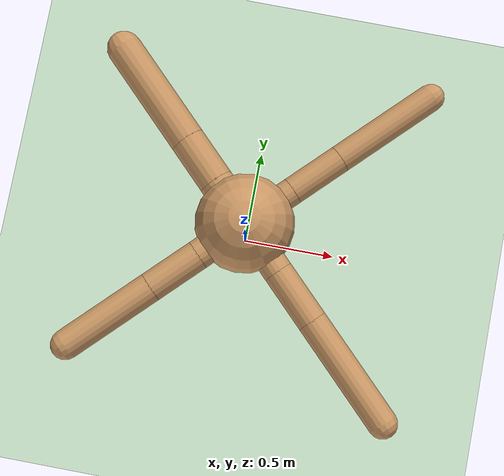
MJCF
<mujoco model="ant">
  <compiler angle="degree" coordinate="local" inertiafromgeom="true"/>
  <option integrator="RK4" timestep="0.01"/>
  <custom>
    <numeric data="0.0 0.0 0.55 1.0 0.0 0.0 0.0 0.0 1.0 0.0 -1.0 0.0 -1.0 0.0 1.0" name="init_qpos"/>
  </custom>
  <default>
    <joint armature="1" damping="1" limited="true"/>
    <geom conaffinity="0" condim="3" density="5.0" friction="1 0.5 0.5" margin="0.01" rgba="0.8 0.6 0.4 1"/>
  </default>
  <asset>
    <texture builtin="gradient" height="100" rgb1="1 1 1" rgb2="0 0 0" type="skybox" width="100"/>
    <texture builtin="flat" height="1278" mark="cross" markrgb="1 1 1" name="texgeom" random="0.01" rgb1="0.8 0.6 0.4" rgb2="0.8 0.6 0.4" type="cube" width="127"/>
    <texture builtin="checker" height="100" name="texplane" rgb1="0 0 0" rgb2="0.8 0.8 0.8" type="2d" width="100"/>
    <material name="MatPlane" reflectance="0.5" shininess="1" specular="1" texrepeat="60 60" texture="texplane"/>
    <material name="geom" texture="texgeom" texuniform="true"/>
  </asset>
  <worldbody>
    <light cutoff="100" diffuse="1 1 1" dir="-0 0 -1.3" directional="true" exponent="1" pos="0 0 1.3" specular=".1 .1 .1"/>
    <geom conaffinity="1" condim="3" material="MatPlane" name="floor" pos="0 0 0" rgba="0.8 0.9 0.8 1" size="40 40 40" type="plane"/>
    <body name="torso" pos="0 0 0.75">
      <camera name="track" mode="trackcom" pos="0 -3 0.3" xyaxes="1 0 0 0 0 1"/>
      <geom name="torso_geom" pos="0 0 0" size="0.25" type="sphere"/>
      <joint armature="0" damping="0" limited="false" margin="0.01" name="root" pos="0 0 0" type="free"/>
      <body name="front_left_leg" pos="0 0 0">
        <geom fromto="0.0 0.0 0.0 0.20278496487012446 0.20278496487012446 0.0" name="aux_1_geom" size="0.07005786574706563" type="capsule"/>
        <body name="aux_1" pos="0.20278496487012446 0.20278496487012446 0">
          <joint axis="0 0 1" name="hip_1" pos="0.0 0.0 0.0" range="-30 30" type="hinge"/>
          <geom fromto="0.0 0.0 0.0 0.20278496487012446 0.20278496487012446 0.0" name="left_leg_geom" size="0.07005786574706563" type="capsule"/>
          <body pos="0.20278496487012446 0.20278496487012446 0">
            <joint axis="-1 1 0" name="ankle_1" pos="0.0 0.0 0.0" range="30 70" type="hinge"/>
            <geom fromto="0.0 0.0 0.0 0.3949706236865805 0.3949706236865805 0.0" name="left_ankle_geom" size="0.07005786574706563" type="capsule"/>
          </body>
        </body>
      </body>
      <body name="front_right_leg" pos="0 0 0">
          <geom fromto="0.0 0.0 0.0 -0.17956628530723184 0.17956628530723184 0.0" name="aux_2_geom" size="0.08875139347040895" type="capsule"/>
          <body name="aux_2" pos="-0.17956628530723184 0.17956628530723184 0">
            <joint axis="0 0 1" name="hip_2" pos="0.0 0.0 0.0" range="-30 30" type="hinge"/>
            <geom fromto="0.0 0.0 0.0 -0.17956628530723184 0.17956628530723184 0.0" name="right_leg_geom" size="0.08875139347040895" type="capsule"/>
            <body pos="-0.17956628530723184 0.17956628530723184 0">
              <joint axis="1 1 0" name="ankle_2" pos="0.0 0.0 0.0" range="-70 -30" type="hinge"/>
              <geom fromto="0.0 0.0 0.0 -0.4060380136306447 0.4060380136306447 0.0" name="right_ankle_geom" size="0.08875139347040895" type="capsule"/>
            </body>
          </body>
        </body>
      <body name="back_leg" pos="0 0 0">
          <geom fromto="0.0 0.0 0.0 -0.19902869675090507 -0.19902869675090507 0.0" name="aux_3_geom" size="0.07594581459482874" type="capsule"/>
          <body name="aux_3" pos="-0.19902869675090507 -0.19902869675090507 0">
            <joint axis="0 0 1" name="hip_3" pos="0.0 0.0 0.0" range="-30 30" type="hinge"/>
            <geom fromto="0.0 0.0 0.0 -0.19902869675090507 -0.19902869675090507 0.0" name="back_leg_geom" size="0.07594581459482874" type="capsule"/>
            <body pos="-0.19902869675090507 -0.19902869675090507 0">
              <joint axis="-1 1 0" name="ankle_3" pos="0.0 0.0 0.0" range="-70 -30" type="hinge"/>
              <geom fromto="0.0 0.0 0.0 -0.3529791774056439 -0.3529791774056439 0.0" name="third_ankle_geom" size="0.07594581459482874" type="capsule"/>
            </body>
          </body>
        </body>
      <body name="right_back_leg" pos="0 0 0">
          <geom fromto="0.0 0.0 0.0 0.20784548244400824 -0.20784548244400824 0.0" name="aux_4_geom" size="0.07527034509937046" type="capsule"/>
          <body name="aux_4" pos="0.20784548244400824 -0.20784548244400824 0">
            <joint axis="0 0 1" name="hip_4" pos="0.0 0.0 0.0" range="-30 30" type="hinge"/>
            <geom fromto="0.0 0.0 0.0 0.20784548244400824 -0.20784548244400824 0.0" name="rightback_leg_geom" size="0.07527034509937046" type="capsule"/>
            <body pos="0.20784548244400824 -0.20784548244400824 0">
              <joint axis="1 1 0" name="ankle_4" pos="0.0 0.0 0.0" range="30 70" type="hinge"/>
              <geom fromto="0.0 0.0 0.0 0.42464033268819645 -0.42464033268819645 0.0" name="fourth_ankle_geom" size="0.07527034509937046" type="capsule"/>
            </body>
          </body>
        </body>
    </body>
  </worldbody>
  <actuator>
    <motor ctrllimited="true" ctrlrange="-1.0 1.0" joint="hip_4" gear="150"/>
    <motor ctrllimited="true" ctrlrange="-1.0 1.0" joint="ankle_4" gear="150"/>
    <motor ctrllimited="true" ctrlrange="-1.0 1.0" joint="hip_1" gear="150"/>
    <motor ctrllimited="true" ctrlrange="-1.0 1.0" joint="ankle_1" gear="150"/>
    <motor ctrllimited="true" ctrlrange="-1.0 1.0" joint="hip_2" gear="150"/>
    <motor ctrllimited="true" ctrlrange="-1.0 1.0" joint="ankle_2" gear="150"/>
    <motor ctrllimited="true" ctrlrange="-1.0 1.0" joint="hip_3" gear="150"/>
    <motor ctrllimited="true" ctrlrange="-1.0 1.0" joint="ankle_3" gear="150"/>
  </actuator>
</mujoco>
